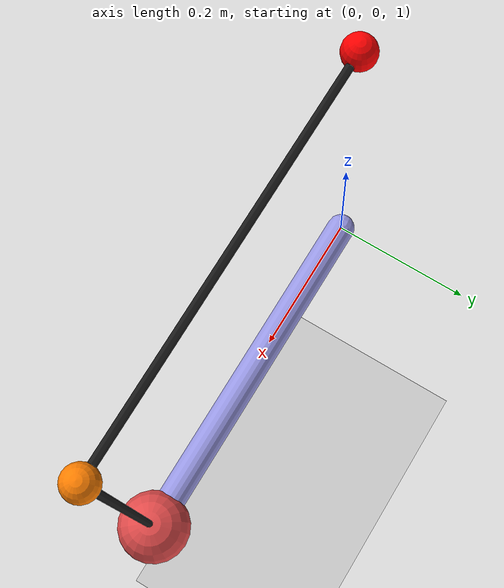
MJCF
<mujoco model="pendulum_cable">
  <!-- Pendulum with a tension-only cable attached to a ceiling anchor via a corner redirect.
       Same pendulum geometry as pendulum.xml, plus a spatial tendon. -->

  <option timestep="0.001" gravity="0 0 -9.81"/>

  <worldbody>
    <light pos="0 0 3" dir="0 0 -1"/>
    <geom name="floor" type="plane" size="2 2 0.1" rgba="0.8 0.8 0.8 1"/>

    <!-- Fixed cable anchor and via-point above the pivot -->
    <site name="anchor" pos="0 0 1.5" size="0.02" rgba="1 0 0 1"/>
    <site name="via" pos="0.5 0 1.5" size="0.02" rgba="1 0.5 0 1"/>

    <!-- Pendulum link: hinge at 1m height, swings in X-Z plane -->
    <body name="link" pos="0 0 1">
      <joint name="hinge" type="hinge" axis="0 1 0" damping="0.05"/>
      <geom name="rod" type="capsule" fromto="0 0 0 0.5 0 0"
            size="0.02" mass="0.001" rgba="0.6 0.6 0.9 1"/>
      <geom name="tip_mass" type="sphere" pos="0.5 0 0"
            size="0.05" mass="1.0" rgba="0.9 0.3 0.3 1"/>
      <site name="tip" pos="0.5 0 0" size="0.02" rgba="0 0.8 0 1"/>
    </body>
  </worldbody>

  <tendon>
    <!-- Tension-only cable: anchor -> via -> tip.
         springlength deadband [0, L_natural]: zero force when slack, pulls when taut. -->
    <spatial name="cable" stiffness="100" springlength="0 1.0"
             width="0.005" rgba="0.1 0.1 0.1 1">
      <site site="anchor"/>
      <site site="via"/>
      <site site="tip"/>
    </spatial>
  </tendon>

  <actuator>
    <motor name="hinge_motor" joint="hinge" gear="1"/>
  </actuator>
</mujoco>
